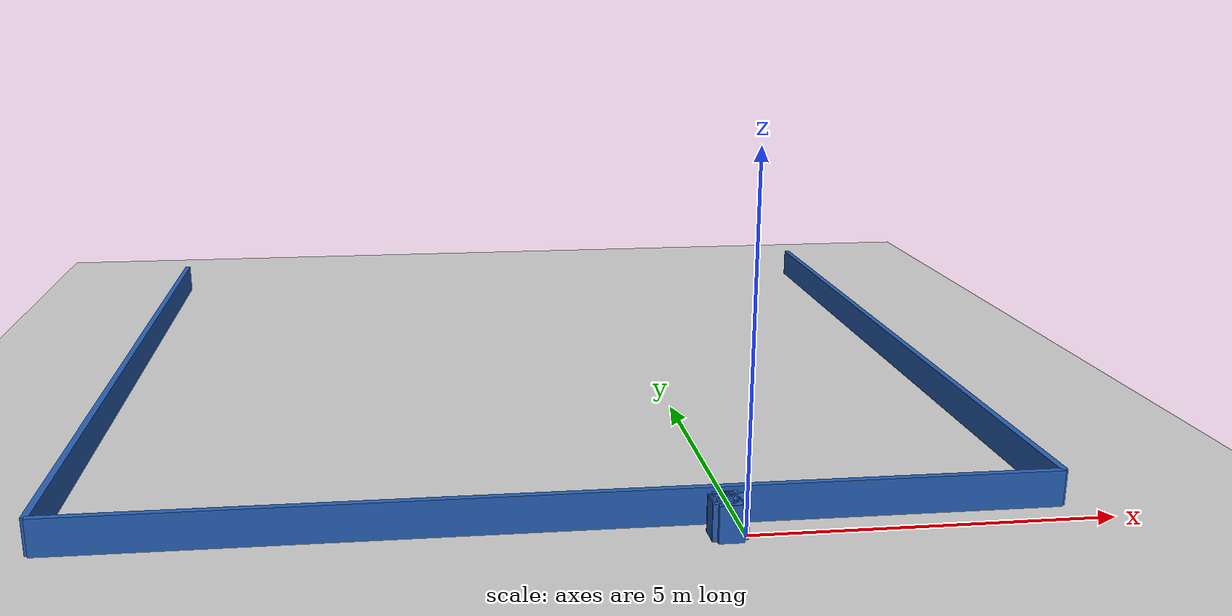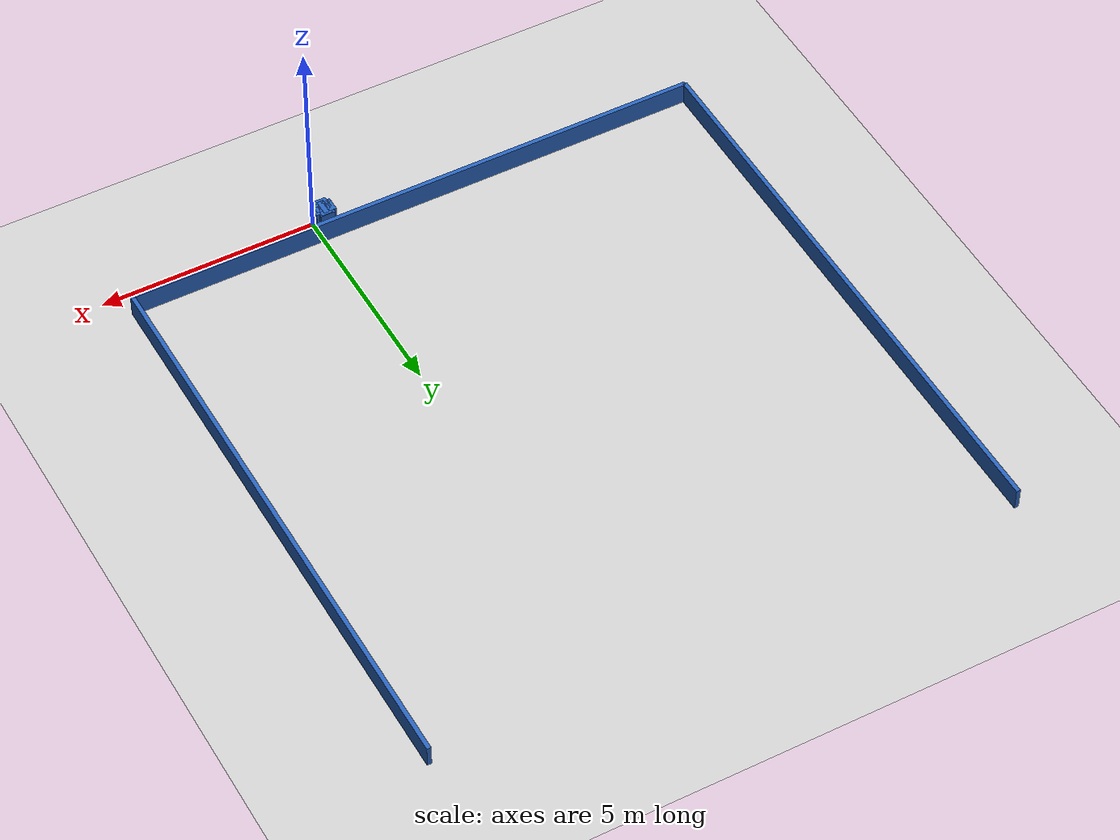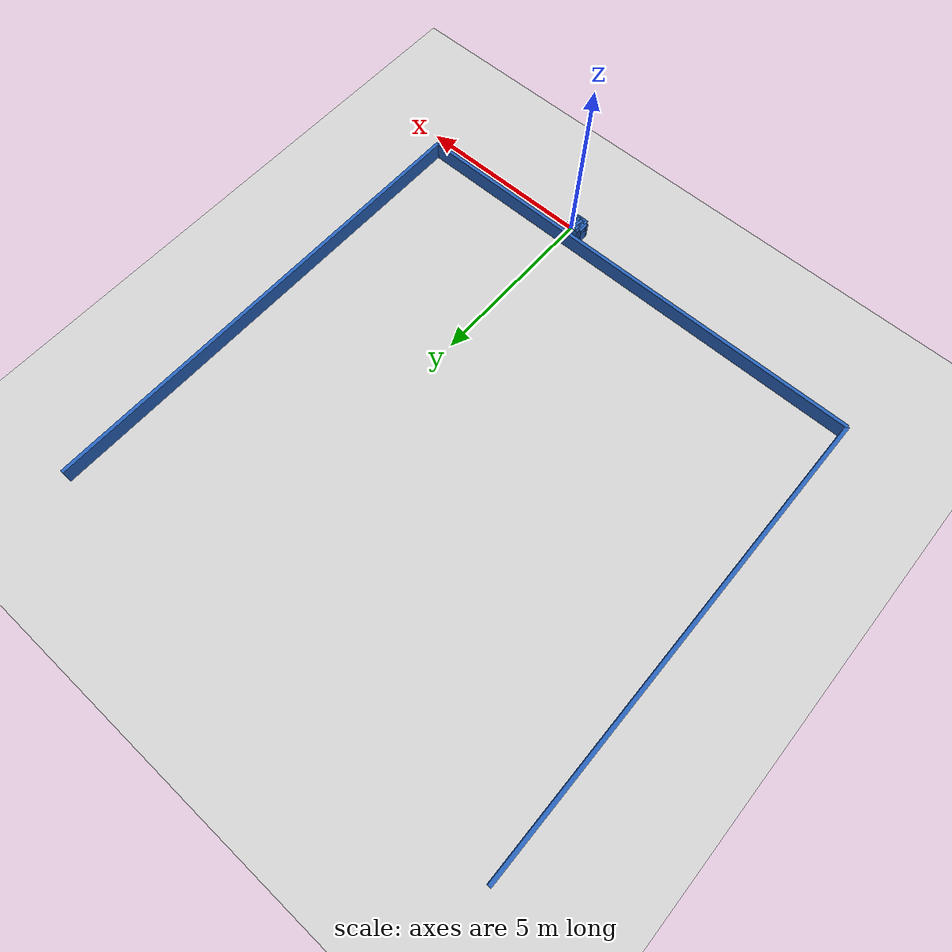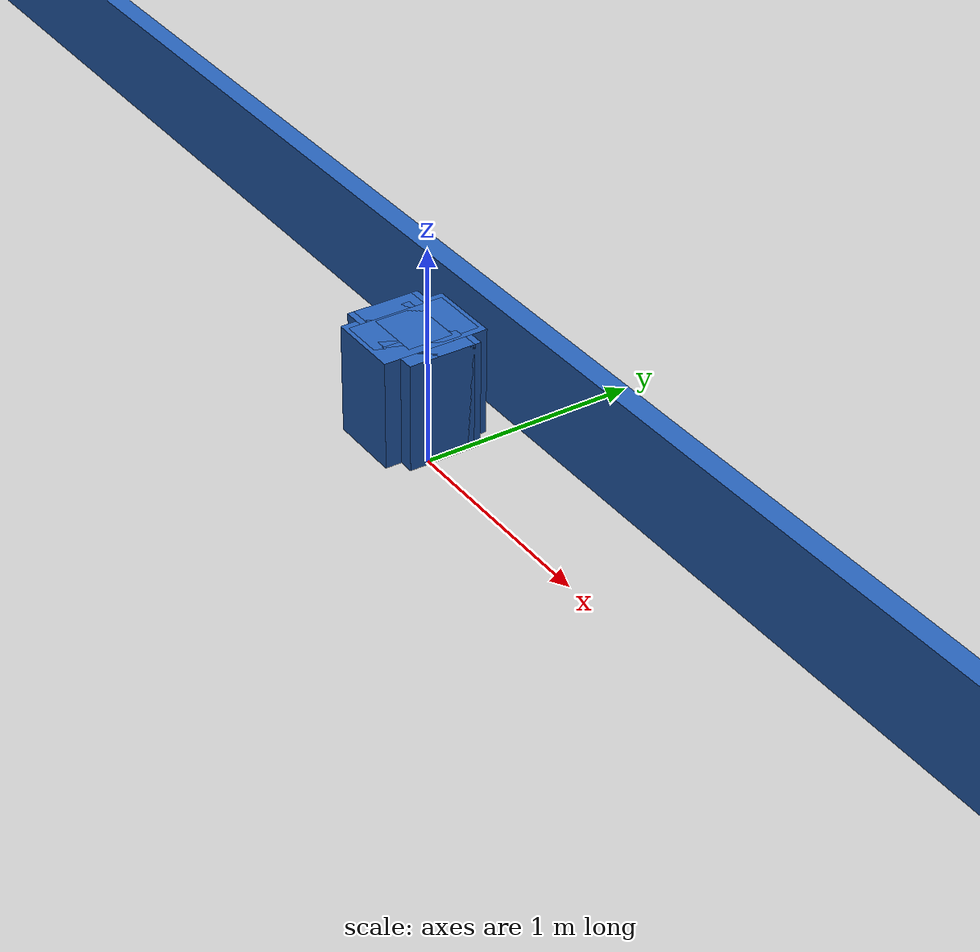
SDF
<?xml version="1.0" ?>
    <sdf version="1.5">
      <world name="default">
        <!-- A global light source -->
        <include>
          <uri>model://sun</uri>
        </include>
        <!-- A ground plane -->
        <include>
          <uri>model://ground_plane</uri>
        </include>

    <model name='libopen_space_final_T2B_119_99'>
      <static>1</static>
      <pose frame=''>-0.225000 0.075000 0.000000 0.000000 0.000000 0.000000</pose>
      <link name='link'>
        <inertial>
          <mass>1</mass>
          <inertia>
            <ixx>0.145833</ixx>
            <ixy>0</ixy>
            <ixz>0</ixz>
            <iyy>0.145833</iyy>
            <iyz>0</iyz>
            <izz>0.125</izz>
          </inertia>
        </inertial>
        <collision name='collision'>
          <geometry>
            <box>
              <size>0.28 0.45 1</size>
            </box>
          </geometry>
          <max_contacts>10</max_contacts>
          <surface>
            <contact>
              <ode/>
            </contact>
            <bounce/>
            <friction>
              <torsional>
                <ode/>
              </torsional>
              <ode/>
            </friction>
          </surface>
        </collision>
        <visual name='visual'>
          <geometry>
            <box>
              <size>0.28 0.45 1</size>
            </box>
          </geometry>
	    <material>
              <ambient>0.152000 0.379000 0.720000 1</ambient>
	      <diffuse>0.152000 0.379000 0.720000 1</diffuse>
          </material>
          <material>
            <script>
              <name>Gazebo/Grey</name>
              <uri>file://media/materials/scripts/gazebo.material</uri>
            </script>
          </material>
        </visual>
        <self_collide>0</self_collide>
        <kinematic>0</kinematic>
        <gravity>1</gravity>
      </link>
      <plugin name='libopen_space_final_T2B_119_99' filename='libopen_space_final_T2B_119_99.so'/>
    </model>

    <model name='libopen_space_final_T2B_112_81'>
      <static>1</static>
      <pose frame=''>-0.225000 0.075000 0.000000 0.000000 0.000000 0.000000</pose>
      <link name='link'>
        <inertial>
          <mass>1</mass>
          <inertia>
            <ixx>0.145833</ixx>
            <ixy>0</ixy>
            <ixz>0</ixz>
            <iyy>0.145833</iyy>
            <iyz>0</iyz>
            <izz>0.125</izz>
          </inertia>
        </inertial>
        <collision name='collision'>
          <geometry>
            <box>
              <size>0.22 0.38 1</size>
            </box>
          </geometry>
          <max_contacts>10</max_contacts>
          <surface>
            <contact>
              <ode/>
            </contact>
            <bounce/>
            <friction>
              <torsional>
                <ode/>
              </torsional>
              <ode/>
            </friction>
          </surface>
        </collision>
        <visual name='visual'>
          <geometry>
            <box>
              <size>0.22 0.38 1</size>
            </box>
          </geometry>
	    <material>
              <ambient>0.152000 0.379000 0.720000 1</ambient>
	      <diffuse>0.152000 0.379000 0.720000 1</diffuse>
          </material>
          <material>
            <script>
              <name>Gazebo/Grey</name>
              <uri>file://media/materials/scripts/gazebo.material</uri>
            </script>
          </material>
        </visual>
        <self_collide>0</self_collide>
        <kinematic>0</kinematic>
        <gravity>1</gravity>
      </link>
      <plugin name='libopen_space_final_T2B_112_81' filename='libopen_space_final_T2B_112_81.so'/>
    </model>

    <model name='libopen_space_final_T2B_118_50'>
      <static>1</static>
      <pose frame=''>-0.225000 0.075000 0.000000 0.000000 0.000000 0.000000</pose>
      <link name='link'>
        <inertial>
          <mass>1</mass>
          <inertia>
            <ixx>0.145833</ixx>
            <ixy>0</ixy>
            <ixz>0</ixz>
            <iyy>0.145833</iyy>
            <iyz>0</iyz>
            <izz>0.125</izz>
          </inertia>
        </inertial>
        <collision name='collision'>
          <geometry>
            <box>
              <size>0.34 0.49 1</size>
            </box>
          </geometry>
          <max_contacts>10</max_contacts>
          <surface>
            <contact>
              <ode/>
            </contact>
            <bounce/>
            <friction>
              <torsional>
                <ode/>
              </torsional>
              <ode/>
            </friction>
          </surface>
        </collision>
        <visual name='visual'>
          <geometry>
            <box>
              <size>0.34 0.49 1</size>
            </box>
          </geometry>
	    <material>
              <ambient>0.152000 0.379000 0.720000 1</ambient>
	      <diffuse>0.152000 0.379000 0.720000 1</diffuse>
          </material>
          <material>
            <script>
              <name>Gazebo/Grey</name>
              <uri>file://media/materials/scripts/gazebo.material</uri>
            </script>
          </material>
        </visual>
        <self_collide>0</self_collide>
        <kinematic>0</kinematic>
        <gravity>1</gravity>
      </link>
      <plugin name='libopen_space_final_T2B_118_50' filename='libopen_space_final_T2B_118_50.so'/>
    </model>

    <model name='libopen_space_final_T2B_80_26'>
      <static>1</static>
      <pose frame=''>-0.225000 0.075000 0.000000 0.000000 0.000000 0.000000</pose>
      <link name='link'>
        <inertial>
          <mass>1</mass>
          <inertia>
            <ixx>0.145833</ixx>
            <ixy>0</ixy>
            <ixz>0</ixz>
            <iyy>0.145833</iyy>
            <iyz>0</iyz>
            <izz>0.125</izz>
          </inertia>
        </inertial>
        <collision name='collision'>
          <geometry>
            <box>
              <size>0.15 0.37 1</size>
            </box>
          </geometry>
          <max_contacts>10</max_contacts>
          <surface>
            <contact>
              <ode/>
            </contact>
            <bounce/>
            <friction>
              <torsional>
                <ode/>
              </torsional>
              <ode/>
            </friction>
          </surface>
        </collision>
        <visual name='visual'>
          <geometry>
            <box>
              <size>0.15 0.37 1</size>
            </box>
          </geometry>
	    <material>
              <ambient>0.152000 0.379000 0.720000 1</ambient>
	      <diffuse>0.152000 0.379000 0.720000 1</diffuse>
          </material>
          <material>
            <script>
              <name>Gazebo/Grey</name>
              <uri>file://media/materials/scripts/gazebo.material</uri>
            </script>
          </material>
        </visual>
        <self_collide>0</self_collide>
        <kinematic>0</kinematic>
        <gravity>1</gravity>
      </link>
      <plugin name='libopen_space_final_T2B_80_26' filename='libopen_space_final_T2B_80_26.so'/>
    </model>

    <model name='libopen_space_final_T2B_105_38'>
      <static>1</static>
      <pose frame=''>-0.225000 0.075000 0.000000 0.000000 0.000000 0.000000</pose>
      <link name='link'>
        <inertial>
          <mass>1</mass>
          <inertia>
            <ixx>0.145833</ixx>
            <ixy>0</ixy>
            <ixz>0</ixz>
            <iyy>0.145833</iyy>
            <iyz>0</iyz>
            <izz>0.125</izz>
          </inertia>
        </inertial>
        <collision name='collision'>
          <geometry>
            <box>
              <size>0.34 0.49 1</size>
            </box>
          </geometry>
          <max_contacts>10</max_contacts>
          <surface>
            <contact>
              <ode/>
            </contact>
            <bounce/>
            <friction>
              <torsional>
                <ode/>
              </torsional>
              <ode/>
            </friction>
          </surface>
        </collision>
        <visual name='visual'>
          <geometry>
            <box>
              <size>0.34 0.49 1</size>
            </box>
          </geometry>
	    <material>
              <ambient>0.152000 0.379000 0.720000 1</ambient>
	      <diffuse>0.152000 0.379000 0.720000 1</diffuse>
          </material>
          <material>
            <script>
              <name>Gazebo/Grey</name>
              <uri>file://media/materials/scripts/gazebo.material</uri>
            </script>
          </material>
        </visual>
        <self_collide>0</self_collide>
        <kinematic>0</kinematic>
        <gravity>1</gravity>
      </link>
      <plugin name='libopen_space_final_T2B_105_38' filename='libopen_space_final_T2B_105_38.so'/>
    </model>

    <model name='libopen_space_final_T2B_96_0'>
      <static>1</static>
      <pose frame=''>-0.225000 0.075000 0.000000 0.000000 0.000000 0.000000</pose>
      <link name='link'>
        <inertial>
          <mass>1</mass>
          <inertia>
            <ixx>0.145833</ixx>
            <ixy>0</ixy>
            <ixz>0</ixz>
            <iyy>0.145833</iyy>
            <iyz>0</iyz>
            <izz>0.125</izz>
          </inertia>
        </inertial>
        <collision name='collision'>
          <geometry>
            <box>
              <size>0.12 0.36 1</size>
            </box>
          </geometry>
          <max_contacts>10</max_contacts>
          <surface>
            <contact>
              <ode/>
            </contact>
            <bounce/>
            <friction>
              <torsional>
                <ode/>
              </torsional>
              <ode/>
            </friction>
          </surface>
        </collision>
        <visual name='visual'>
          <geometry>
            <box>
              <size>0.12 0.36 1</size>
            </box>
          </geometry>
	    <material>
              <ambient>0.152000 0.379000 0.720000 1</ambient>
	      <diffuse>0.152000 0.379000 0.720000 1</diffuse>
          </material>
          <material>
            <script>
              <name>Gazebo/Grey</name>
              <uri>file://media/materials/scripts/gazebo.material</uri>
            </script>
          </material>
        </visual>
        <self_collide>0</self_collide>
        <kinematic>0</kinematic>
        <gravity>1</gravity>
      </link>
      <plugin name='libopen_space_final_T2B_96_0' filename='libopen_space_final_T2B_96_0.so'/>
    </model>

    <model name='libopen_space_final_T2B_105_94'>
      <static>1</static>
      <pose frame=''>-0.225000 0.075000 0.000000 0.000000 0.000000 0.000000</pose>
      <link name='link'>
        <inertial>
          <mass>1</mass>
          <inertia>
            <ixx>0.145833</ixx>
            <ixy>0</ixy>
            <ixz>0</ixz>
            <iyy>0.145833</iyy>
            <iyz>0</iyz>
            <izz>0.125</izz>
          </inertia>
        </inertial>
        <collision name='collision'>
          <geometry>
            <box>
              <size>0.26 0.21 1</size>
            </box>
          </geometry>
          <max_contacts>10</max_contacts>
          <surface>
            <contact>
              <ode/>
            </contact>
            <bounce/>
            <friction>
              <torsional>
                <ode/>
              </torsional>
              <ode/>
            </friction>
          </surface>
        </collision>
        <visual name='visual'>
          <geometry>
            <box>
              <size>0.26 0.21 1</size>
            </box>
          </geometry>
	    <material>
              <ambient>0.152000 0.379000 0.720000 1</ambient>
	      <diffuse>0.152000 0.379000 0.720000 1</diffuse>
          </material>
          <material>
            <script>
              <name>Gazebo/Grey</name>
              <uri>file://media/materials/scripts/gazebo.material</uri>
            </script>
          </material>
        </visual>
        <self_collide>0</self_collide>
        <kinematic>0</kinematic>
        <gravity>1</gravity>
      </link>
      <plugin name='libopen_space_final_T2B_105_94' filename='libopen_space_final_T2B_105_94.so'/>
    </model>

    <model name='libopen_space_final_T2B_79_14'>
      <static>1</static>
      <pose frame=''>-0.225000 0.075000 0.000000 0.000000 0.000000 0.000000</pose>
      <link name='link'>
        <inertial>
          <mass>1</mass>
          <inertia>
            <ixx>0.145833</ixx>
            <ixy>0</ixy>
            <ixz>0</ixz>
            <iyy>0.145833</iyy>
            <iyz>0</iyz>
            <izz>0.125</izz>
          </inertia>
        </inertial>
        <collision name='collision'>
          <geometry>
            <box>
              <size>0.31 0.27 1</size>
            </box>
          </geometry>
          <max_contacts>10</max_contacts>
          <surface>
            <contact>
              <ode/>
            </contact>
            <bounce/>
            <friction>
              <torsional>
                <ode/>
              </torsional>
              <ode/>
            </friction>
          </surface>
        </collision>
        <visual name='visual'>
          <geometry>
            <box>
              <size>0.31 0.27 1</size>
            </box>
          </geometry>
	    <material>
              <ambient>0.152000 0.379000 0.720000 1</ambient>
	      <diffuse>0.152000 0.379000 0.720000 1</diffuse>
          </material>
          <material>
            <script>
              <name>Gazebo/Grey</name>
              <uri>file://media/materials/scripts/gazebo.material</uri>
            </script>
          </material>
        </visual>
        <self_collide>0</self_collide>
        <kinematic>0</kinematic>
        <gravity>1</gravity>
      </link>
      <plugin name='libopen_space_final_T2B_79_14' filename='libopen_space_final_T2B_79_14.so'/>
    </model>

    <model name='libopen_space_final_T2B_103_85'>
      <static>1</static>
      <pose frame=''>-0.225000 0.075000 0.000000 0.000000 0.000000 0.000000</pose>
      <link name='link'>
        <inertial>
          <mass>1</mass>
          <inertia>
            <ixx>0.145833</ixx>
            <ixy>0</ixy>
            <ixz>0</ixz>
            <iyy>0.145833</iyy>
            <iyz>0</iyz>
            <izz>0.125</izz>
          </inertia>
        </inertial>
        <collision name='collision'>
          <geometry>
            <box>
              <size>0.17 0.15 1</size>
            </box>
          </geometry>
          <max_contacts>10</max_contacts>
          <surface>
            <contact>
              <ode/>
            </contact>
            <bounce/>
            <friction>
              <torsional>
                <ode/>
              </torsional>
              <ode/>
            </friction>
          </surface>
        </collision>
        <visual name='visual'>
          <geometry>
            <box>
              <size>0.17 0.15 1</size>
            </box>
          </geometry>
	    <material>
              <ambient>0.152000 0.379000 0.720000 1</ambient>
	      <diffuse>0.152000 0.379000 0.720000 1</diffuse>
          </material>
          <material>
            <script>
              <name>Gazebo/Grey</name>
              <uri>file://media/materials/scripts/gazebo.material</uri>
            </script>
          </material>
        </visual>
        <self_collide>0</self_collide>
        <kinematic>0</kinematic>
        <gravity>1</gravity>
      </link>
      <plugin name='libopen_space_final_T2B_103_85' filename='libopen_space_final_T2B_103_85.so'/>
    </model>

    <model name='libopen_space_final_T2B_125_67'>
      <static>1</static>
      <pose frame=''>-0.225000 0.075000 0.000000 0.000000 0.000000 0.000000</pose>
      <link name='link'>
        <inertial>
          <mass>1</mass>
          <inertia>
            <ixx>0.145833</ixx>
            <ixy>0</ixy>
            <ixz>0</ixz>
            <iyy>0.145833</iyy>
            <iyz>0</iyz>
            <izz>0.125</izz>
          </inertia>
        </inertial>
        <collision name='collision'>
          <geometry>
            <box>
              <size>0.48 0.28 1</size>
            </box>
          </geometry>
          <max_contacts>10</max_contacts>
          <surface>
            <contact>
              <ode/>
            </contact>
            <bounce/>
            <friction>
              <torsional>
                <ode/>
              </torsional>
              <ode/>
            </friction>
          </surface>
        </collision>
        <visual name='visual'>
          <geometry>
            <box>
              <size>0.48 0.28 1</size>
            </box>
          </geometry>
	    <material>
              <ambient>0.152000 0.379000 0.720000 1</ambient>
	      <diffuse>0.152000 0.379000 0.720000 1</diffuse>
          </material>
          <material>
            <script>
              <name>Gazebo/Grey</name>
              <uri>file://media/materials/scripts/gazebo.material</uri>
            </script>
          </material>
        </visual>
        <self_collide>0</self_collide>
        <kinematic>0</kinematic>
        <gravity>1</gravity>
      </link>
      <plugin name='libopen_space_final_T2B_125_67' filename='libopen_space_final_T2B_125_67.so'/>
    </model>

    <model name='libopen_space_final_T2B_112_28'>
      <static>1</static>
      <pose frame=''>-0.225000 0.075000 0.000000 0.000000 0.000000 0.000000</pose>
      <link name='link'>
        <inertial>
          <mass>1</mass>
          <inertia>
            <ixx>0.145833</ixx>
            <ixy>0</ixy>
            <ixz>0</ixz>
            <iyy>0.145833</iyy>
            <iyz>0</iyz>
            <izz>0.125</izz>
          </inertia>
        </inertial>
        <collision name='collision'>
          <geometry>
            <box>
              <size>0.37 0.19 1</size>
            </box>
          </geometry>
          <max_contacts>10</max_contacts>
          <surface>
            <contact>
              <ode/>
            </contact>
            <bounce/>
            <friction>
              <torsional>
                <ode/>
              </torsional>
              <ode/>
            </friction>
          </surface>
        </collision>
        <visual name='visual'>
          <geometry>
            <box>
              <size>0.37 0.19 1</size>
            </box>
          </geometry>
	    <material>
              <ambient>0.152000 0.379000 0.720000 1</ambient>
	      <diffuse>0.152000 0.379000 0.720000 1</diffuse>
          </material>
          <material>
            <script>
              <name>Gazebo/Grey</name>
              <uri>file://media/materials/scripts/gazebo.material</uri>
            </script>
          </material>
        </visual>
        <self_collide>0</self_collide>
        <kinematic>0</kinematic>
        <gravity>1</gravity>
      </link>
      <plugin name='libopen_space_final_T2B_112_28' filename='libopen_space_final_T2B_112_28.so'/>
    </model>

    <model name='libopen_space_final_T2B_109_60'>
      <static>1</static>
      <pose frame=''>-0.225000 0.075000 0.000000 0.000000 0.000000 0.000000</pose>
      <link name='link'>
        <inertial>
          <mass>1</mass>
          <inertia>
            <ixx>0.145833</ixx>
            <ixy>0</ixy>
            <ixz>0</ixz>
            <iyy>0.145833</iyy>
            <iyz>0</iyz>
            <izz>0.125</izz>
          </inertia>
        </inertial>
        <collision name='collision'>
          <geometry>
            <box>
              <size>0.48 0.34 1</size>
            </box>
          </geometry>
          <max_contacts>10</max_contacts>
          <surface>
            <contact>
              <ode/>
            </contact>
            <bounce/>
            <friction>
              <torsional>
                <ode/>
              </torsional>
              <ode/>
            </friction>
          </surface>
        </collision>
        <visual name='visual'>
          <geometry>
            <box>
              <size>0.48 0.34 1</size>
            </box>
          </geometry>
	    <material>
              <ambient>0.152000 0.379000 0.720000 1</ambient>
	      <diffuse>0.152000 0.379000 0.720000 1</diffuse>
          </material>
          <material>
            <script>
              <name>Gazebo/Grey</name>
              <uri>file://media/materials/scripts/gazebo.material</uri>
            </script>
          </material>
        </visual>
        <self_collide>0</self_collide>
        <kinematic>0</kinematic>
        <gravity>1</gravity>
      </link>
      <plugin name='libopen_space_final_T2B_109_60' filename='libopen_space_final_T2B_109_60.so'/>
    </model>

        <model name='bottom_wall'>
          <static>1</static>
          <pose frame=''>-2.25 0.5 0.000000 0.000000 0.000000 1.57079632</pose>
          <link name='link'>
            <inertial>
            <mass>1</mass>
            <inertia>
              <ixx>0.145833</ixx>
              <ixy>0</ixy>
              <ixz>0</ixz>
              <iyy>0.145833</iyy>
              <iyz>0</iyz>
              <izz>0.125</izz>
            </inertia>
            </inertial>
            <collision name='collision'>
            <geometry>
              <box>
              <size>0.1 13.5 1</size>
              </box>
            </geometry>
            <max_contacts>10</max_contacts>
            <surface>
              <contact>
              <ode/>
              </contact>
              <bounce/>
              <friction>
              <torsional>
                <ode/>
              </torsional>
              <ode/>
              </friction>
            </surface>
            </collision>
            <visual name='visual'>
            <geometry>
              <box>
              <size>0.1 13.5 1</size>
              </box>
            </geometry>
            <material>
              <ambient>0.152000 0.379000 0.720000 1</ambient>
            <diffuse>0.152000 0.379000 0.720000 1</diffuse>
            </material>
            <material>
              <script>
              <name>Gazebo/Grey</name>
              <uri>file://media/materials/scripts/gazebo.material</uri>
              </script>
            </material>
            </visual>
            <self_collide>0</self_collide>
            <kinematic>0</kinematic>
            <gravity>1</gravity>
          </link>
        </model>

        <model name='left_wall'>
          <static>1</static>
          <pose frame=''>-9 7.25 0.000000 0.000000 0.000000 0.000000</pose>
          <link name='link'>
            <inertial>
            <mass>1</mass>
            <inertia>
              <ixx>0.145833</ixx>
              <ixy>0</ixy>
              <ixz>0</ixz>
              <iyy>0.145833</iyy>
              <iyz>0</iyz>
              <izz>0.125</izz>
            </inertia>
            </inertial>
            <collision name='collision'>
            <geometry>
              <box>
              <size>0.1 13.5 1</size>
              </box>
            </geometry>
            <max_contacts>10</max_contacts>
            <surface>
              <contact>
              <ode/>
              </contact>
              <bounce/>
              <friction>
              <torsional>
                <ode/>
              </torsional>
              <ode/>
              </friction>
            </surface>
            </collision>
            <visual name='visual'>
            <geometry>
              <box>
              <size>0.1 13.5 1</size>
              </box>
            </geometry>
            <material>
              <ambient>0.152000 0.379000 0.720000 1</ambient>
            <diffuse>0.152000 0.379000 0.720000 1</diffuse>
            </material>
            <material>
              <script>
              <name>Gazebo/Grey</name>
              <uri>file://media/materials/scripts/gazebo.material</uri>
              </script>
            </material>
            </visual>
            <self_collide>0</self_collide>
            <kinematic>0</kinematic>
            <gravity>1</gravity>
          </link>
        </model>

        <model name='right_wall'>
          <static>1</static>
          <pose frame=''>4.5 7.25 0.000000 0.000000 0.000000 0.000000</pose>
          <link name='link'>
            <inertial>
            <mass>1</mass>
            <inertia>
              <ixx>0.145833</ixx>
              <ixy>0</ixy>
              <ixz>0</ixz>
              <iyy>0.145833</iyy>
              <iyz>0</iyz>
              <izz>0.125</izz>
            </inertia>
            </inertial>
            <collision name='collision'>
            <geometry>
              <box>
              <size>0.1 13.5 1</size>
              </box>
            </geometry>
            <max_contacts>10</max_contacts>
            <surface>
              <contact>
              <ode/>
              </contact>
              <bounce/>
              <friction>
              <torsional>
                <ode/>
              </torsional>
              <ode/>
              </friction>
            </surface>
            </collision>
            <visual name='visual'>
            <geometry>
              <box>
              <size>0.1 13.5 1</size>
              </box>
            </geometry>
            <material>
              <ambient>0.152000 0.379000 0.720000 1</ambient>
            <diffuse>0.152000 0.379000 0.720000 1</diffuse>
            </material>
            <material>
              <script>
              <name>Gazebo/Grey</name>
              <uri>file://media/materials/scripts/gazebo.material</uri>
              </script>
            </material>
            </visual>
            <self_collide>0</self_collide>
            <kinematic>0</kinematic>
            <gravity>1</gravity>
          </link>
        </model>

      </world>
    </sdf>"
